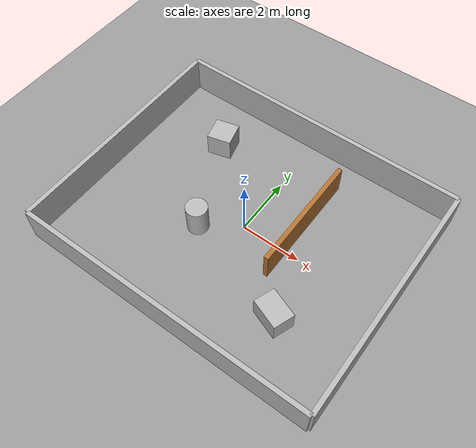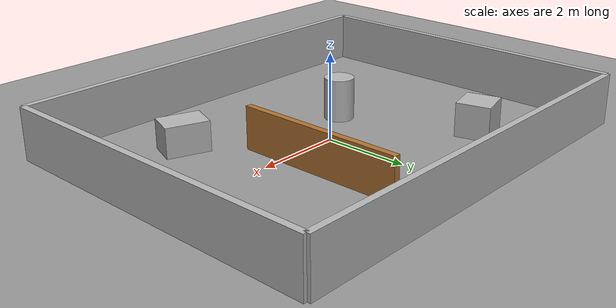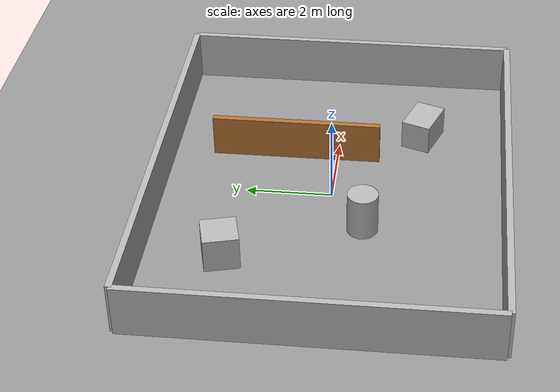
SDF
<?xml version="1.0"?>
<sdf version="1.9">
  <world name="navigation_basic">
    <physics name="1ms" type="ignored">
      <max_step_size>0.001</max_step_size>
      <real_time_factor>1.0</real_time_factor>
    </physics>
    <plugin filename="gz-sim-physics-system" name="gz::sim::systems::Physics"/>
    <plugin filename="gz-sim-user-commands-system" name="gz::sim::systems::UserCommands"/>
    <plugin filename="gz-sim-scene-broadcaster-system" name="gz::sim::systems::SceneBroadcaster"/>
    <plugin filename="gz-sim-sensors-system" name="gz::sim::systems::Sensors">
      <render_engine>ogre2</render_engine>
    </plugin>
    <plugin filename="gz-sim-imu-system" name="gz::sim::systems::Imu"/>
    <light type="directional" name="sun">
      <pose>0 0 10 0 0 0</pose><cast_shadows>true</cast_shadows>
      <diffuse>0.85 0.85 0.85 1</diffuse><specular>0.2 0.2 0.2 1</specular>
      <direction>-0.5 0.1 -0.9</direction>
    </light>
    <model name="ground_plane">
      <static>true</static>
      <link name="link">
        <collision name="collision"><geometry><plane><normal>0 0 1</normal><size>20 20</size></plane></geometry></collision>
        <visual name="visual">
          <geometry><plane><normal>0 0 1</normal><size>20 20</size></plane></geometry>
          <material><ambient>0.60 0.60 0.60 1</ambient><diffuse>0.60 0.60 0.60 1</diffuse></material>
        </visual>
      </link>
    </model>

    <!-- A 10 x 8 m room. The split interior wall leaves routes around both ends. -->
    <model name="north_wall">
      <static>true</static><pose>0 4 0.6 0 0 0</pose>
      <link name="link"><collision name="collision"><geometry><box><size>10 0.15 1.2</size></box></geometry></collision>
        <visual name="visual"><geometry><box><size>10 0.15 1.2</size></box></geometry></visual></link>
    </model>
    <model name="south_wall">
      <static>true</static><pose>0 -4 0.6 0 0 0</pose>
      <link name="link"><collision name="collision"><geometry><box><size>10 0.15 1.2</size></box></geometry></collision>
        <visual name="visual"><geometry><box><size>10 0.15 1.2</size></box></geometry></visual></link>
    </model>
    <model name="east_wall">
      <static>true</static><pose>5 0 0.6 0 0 0</pose>
      <link name="link"><collision name="collision"><geometry><box><size>0.15 8 1.2</size></box></geometry></collision>
        <visual name="visual"><geometry><box><size>0.15 8 1.2</size></box></geometry></visual></link>
    </model>
    <model name="west_wall">
      <static>true</static><pose>-5 0 0.6 0 0 0</pose>
      <link name="link"><collision name="collision"><geometry><box><size>0.15 8 1.2</size></box></geometry></collision>
        <visual name="visual"><geometry><box><size>0.15 8 1.2</size></box></geometry></visual></link>
    </model>
    <model name="interior_wall">
      <static>true</static><pose>1.5 1.0 0.5 0 0 0</pose>
      <link name="link"><collision name="collision"><geometry><box><size>0.15 4.0 1.0</size></box></geometry></collision>
        <visual name="visual"><geometry><box><size>0.15 4.0 1.0</size></box></geometry>
          <material><ambient>0.70 0.45 0.20 1</ambient><diffuse>0.70 0.45 0.20 1</diffuse></material>
        </visual></link>
    </model>
    <model name="box_northwest">
      <static>true</static><pose>-2.5 2.2 0.4 0 0 0.25</pose>
      <link name="link"><collision name="collision"><geometry><box><size>0.8 0.8 0.8</size></box></geometry></collision>
        <visual name="visual"><geometry><box><size>0.8 0.8 0.8</size></box></geometry></visual></link>
    </model>
    <model name="box_southeast">
      <static>true</static><pose>2.5 -2.0 0.35 0 0 -0.35</pose>
      <link name="link"><collision name="collision"><geometry><box><size>1.0 0.7 0.7</size></box></geometry></collision>
        <visual name="visual"><geometry><box><size>1.0 0.7 0.7</size></box></geometry></visual></link>
    </model>
    <model name="center_column">
      <static>true</static><pose>-1.2 -0.8 0.5 0 0 0</pose>
      <link name="link"><collision name="collision"><geometry><cylinder><radius>0.35</radius><length>1.0</length></cylinder></geometry></collision>
        <visual name="visual"><geometry><cylinder><radius>0.35</radius><length>1.0</length></cylinder></geometry></visual></link>
    </model>
  </world>
</sdf>
